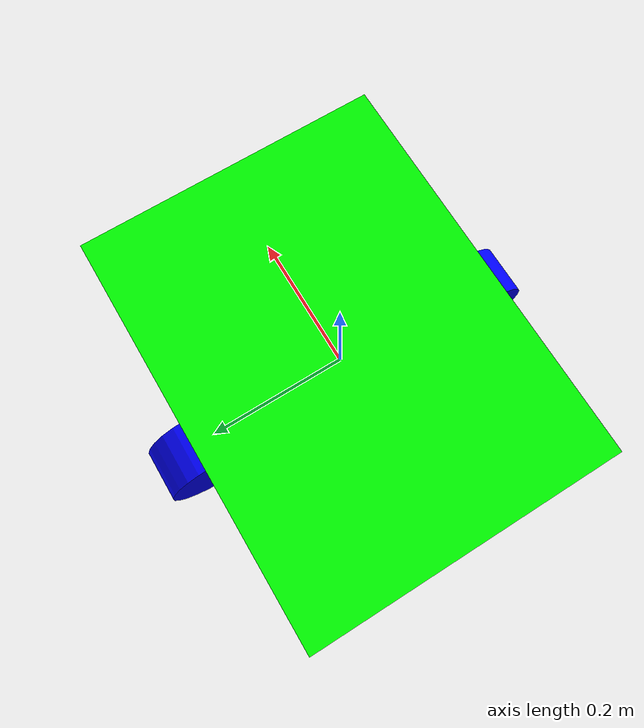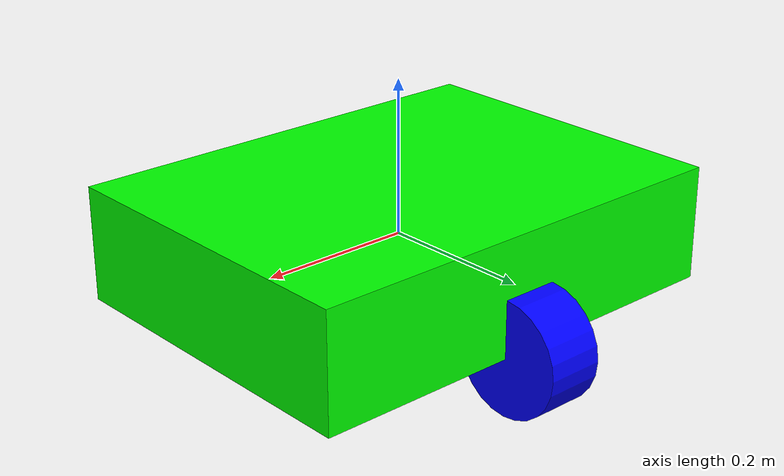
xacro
<?xml version="1.0"?>
<!-- CMP 438: Communicating Robots - Isaac D. Hoyos -->
<robot name="diffbot" xmlns:xacro="http://www.ros.org/wiki/xacro">

  <!-- ================= PARAMETERS ================= -->
  <xacro:property name="wheel_radius" value="0.075"/>
  <xacro:property name="wheel_width" value="0.075"/>
  <xacro:property name="wheel_sep" value="0.45"/>
  <xacro:property name="half_wheel_sep" value="${wheel_sep * 0.5}"/>

  <!-- ================= BASE ================= -->
  <link name="base_link">
    <visual>
      <geometry>
        <box size="0.6 0.45 0.15"/>
      </geometry>
      <material name="green">
        <color rgba="0 1 0 1"/>
      </material>
    </visual>

    <collision>
      <geometry>
        <box size="0.6 0.45 0.15"/>
      </geometry>
    </collision>

    <inertial>
      <mass value="8.0"/>
      <inertia
        ixx="0.2" iyy="0.2" izz="0.2"
        ixy="0.0" ixz="0.0" iyz="0.0"/>
    </inertial>
  </link>

  <!-- ================= LEFT WHEEL ================= -->
  <link name="left_wheel">
    <visual>
      <geometry>
        <cylinder radius="${wheel_radius}" length="${wheel_width}"/>
      </geometry>
      <material name="blue">
        <color rgba="0 0 1 1"/>
      </material>
    </visual>

    <collision>
      <geometry>
        <cylinder radius="${wheel_radius}" length="${wheel_width}"/>
      </geometry>
    </collision>

    <inertial>
      <mass value="1.5"/>
      <inertia
        ixx="0.02" iyy="0.02" izz="0.02"
        ixy="0.0" ixz="0.0" iyz="0.0"/>
    </inertial>
  </link>

  <!-- ================= RIGHT WHEEL ================= -->
  <link name="right_wheel">
    <visual>
      <geometry>
        <cylinder radius="${wheel_radius}" length="${wheel_width}"/>
      </geometry>
      <material name="blue">
        <color rgba="0 0 1 1"/>
      </material>
    </visual>

    <collision>
      <geometry>
        <cylinder radius="${wheel_radius}" length="${wheel_width}"/>
      </geometry>
    </collision>

    <inertial>
      <mass value="1.5"/>
      <inertia
        ixx="0.02" iyy="0.02" izz="0.02"
        ixy="0.0" ixz="0.0" iyz="0.0"/>
    </inertial>
  </link>

  <!-- ================= LEFT JOINT ================= -->
  <joint name="left_wheel_joint" type="continuous">
    <parent link="base_link"/>
    <child link="left_wheel"/>
    <origin xyz="0 ${half_wheel_sep} -0.075" rpy="0 1.5707 0"/>
    <axis xyz="0 1 0"/>
  </joint>

  <!-- ================= RIGHT JOINT ================= -->
  <joint name="right_wheel_joint" type="continuous">
    <parent link="base_link"/>
    <child link="right_wheel"/>
    <origin xyz="0 -${half_wheel_sep} -0.075" rpy="0 1.5707 0"/>
    <axis xyz="0 1 0"/>
  </joint>

  <!-- ================= GAZEBO DIFF DRIVE ================= -->
  <gazebo>
    <plugin
      filename="/opt/ros/kilted/lib/libros_gz_sim_diff_drive_system.so"
      name="ros_gz_diff_drive">

      <left_joint>left_wheel_joint</left_joint>
      <right_joint>right_wheel_joint</right_joint>

      <wheel_separation>${wheel_sep}</wheel_separation>
      <wheel_radius>${wheel_radius}</wheel_radius>

      <command_topic>cmd_vel</command_topic>
      <odom_topic>odom</odom_topic>
      <odometry_frame>odom</odometry_frame>
      <robot_base_frame>base_link</robot_base_frame>

      <publish_odom>true</publish_odom>
      <publish_tf>true</publish_tf>

    </plugin>
  </gazebo>

</robot>
